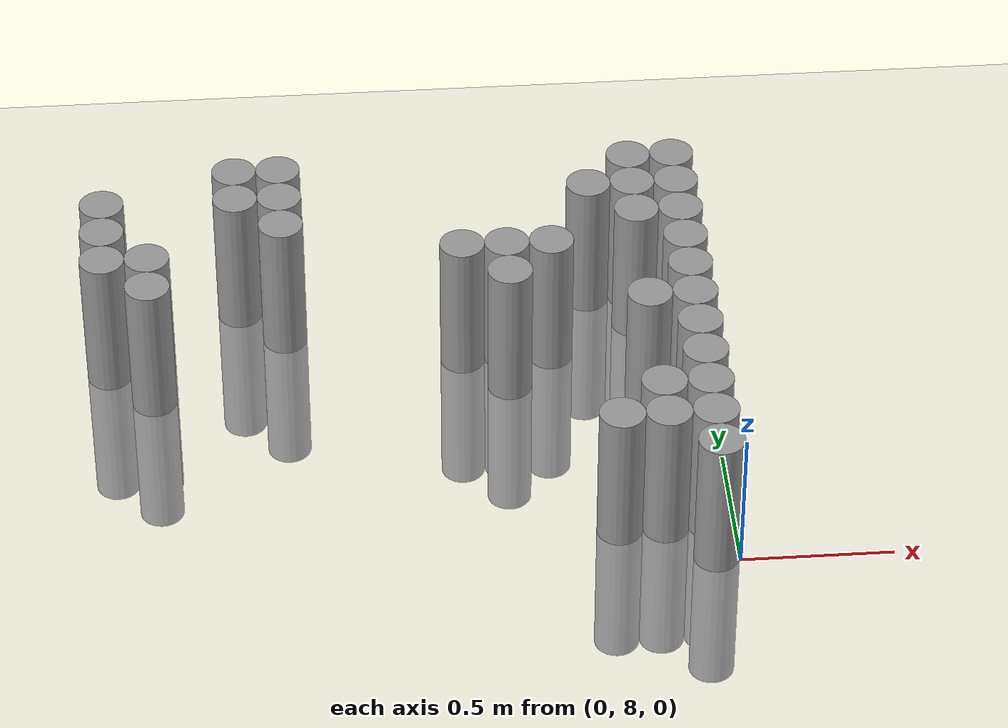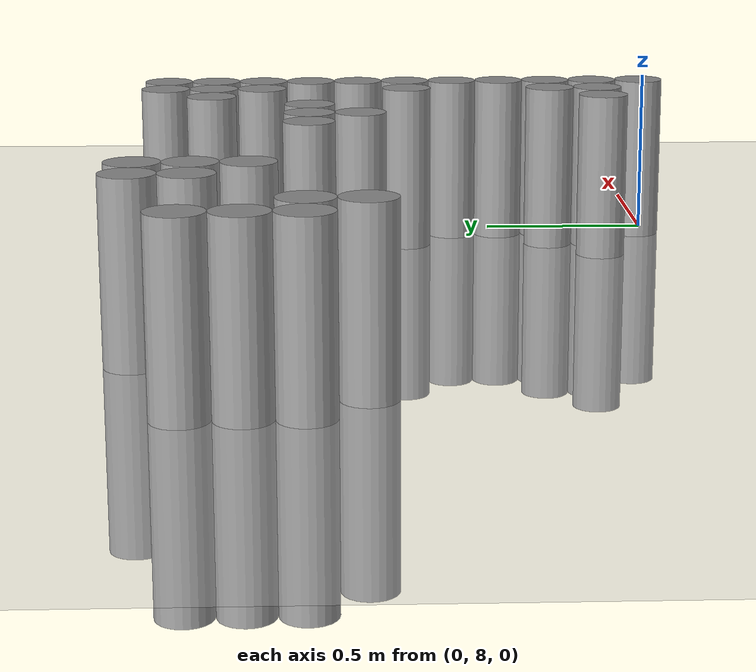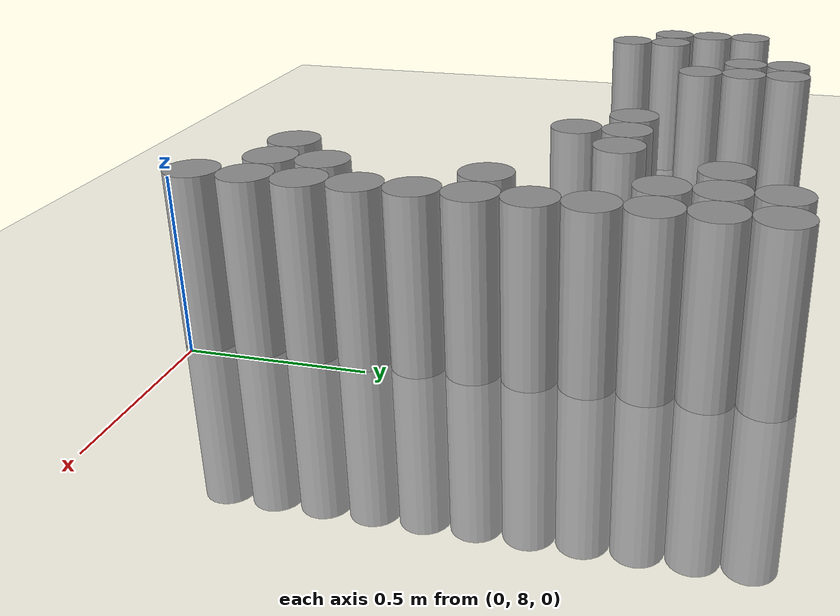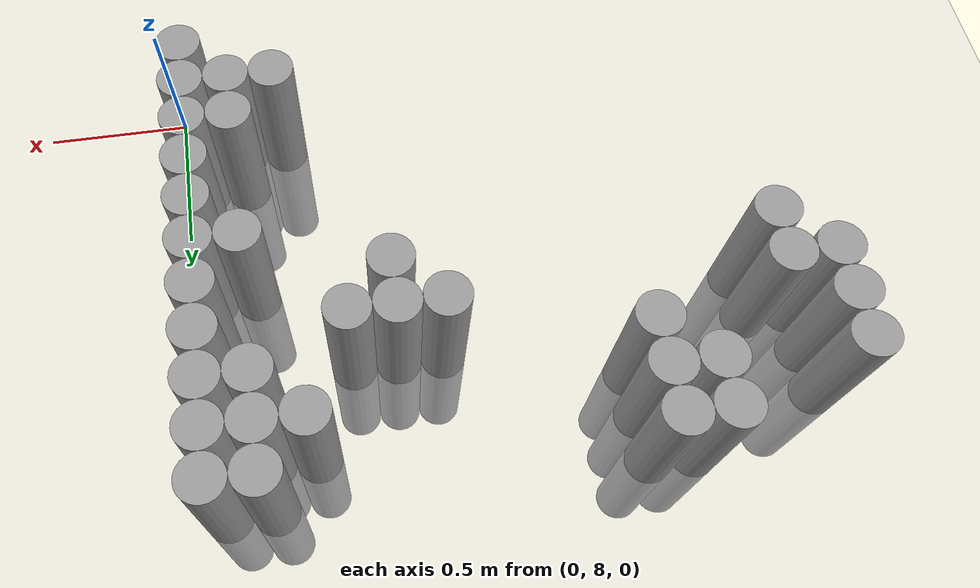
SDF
<sdf version="1.6">
 <world name="default">
  <model name="ground_plane">
   <static>1</static>
   <link name="link">
    <collision name="collision">
     <geometry><plane><normal>0 0 1</normal><size>100 100</size></plane></geometry>
     <surface><friction><ode><mu>100</mu><mu2>50</mu2></ode></friction></surface>
    </collision>
    <visual name="visual">
     <cast_shadows>0</cast_shadows>
     <geometry><plane><normal>0 0 1</normal><size>100 100</size></plane></geometry>
     <material>
      <script><uri>file://media/materials/scripts/gazebo.material</uri><name>Gazebo/Grey</name></script>
     </material>
    </visual>
   </link>
  </model>
  <model name="unit_cylinder_181">
   <pose>-2.025000 9.075000 0.000000 0.000000 0.000000 0.000000</pose>
   <link name="link">
    <inertial>
     <mass>1</mass>
     <inertia><ixx>0.145833</ixx><ixy>0</ixy><ixz>0</ixz><iyy>0.145833</iyy><iyz>0</iyz><izz>0.125</izz></inertia>
    </inertial>
    <collision name="collision">
     <geometry><cylinder><radius>0.075000</radius><length>1</length></cylinder></geometry>
    </collision>
    <visual name="visual">
     <geometry><cylinder><radius>0.075000</radius><length>1</length></cylinder></geometry>
     <material>
      <script><name>Gazebo/Grey</name><uri>file://media/materials/scripts/gazebo.material</uri></script>
     </material>
    </visual>
   </link>
  </model>
  <model name="unit_cylinder_182">
   <pose>-2.025000 9.225000 0.000000 0.000000 0.000000 0.000000</pose>
   <link name="link">
    <inertial>
     <mass>1</mass>
     <inertia><ixx>0.145833</ixx><ixy>0</ixy><ixz>0</ixz><iyy>0.145833</iyy><iyz>0</iyz><izz>0.125</izz></inertia>
    </inertial>
    <collision name="collision">
     <geometry><cylinder><radius>0.075000</radius><length>1</length></cylinder></geometry>
    </collision>
    <visual name="visual">
     <geometry><cylinder><radius>0.075000</radius><length>1</length></cylinder></geometry>
     <material>
      <script><name>Gazebo/Grey</name><uri>file://media/materials/scripts/gazebo.material</uri></script>
     </material>
    </visual>
   </link>
  </model>
  <model name="unit_cylinder_183">
   <pose>-2.025000 9.375000 0.000000 0.000000 0.000000 0.000000</pose>
   <link name="link">
    <inertial>
     <mass>1</mass>
     <inertia><ixx>0.145833</ixx><ixy>0</ixy><ixz>0</ixz><iyy>0.145833</iyy><iyz>0</iyz><izz>0.125</izz></inertia>
    </inertial>
    <collision name="collision">
     <geometry><cylinder><radius>0.075000</radius><length>1</length></cylinder></geometry>
    </collision>
    <visual name="visual">
     <geometry><cylinder><radius>0.075000</radius><length>1</length></cylinder></geometry>
     <material>
      <script><name>Gazebo/Grey</name><uri>file://media/materials/scripts/gazebo.material</uri></script>
     </material>
    </visual>
   </link>
  </model>
  <model name="unit_cylinder_185">
   <pose>-1.875000 8.925000 0.000000 0.000000 0.000000 0.000000</pose>
   <link name="link">
    <inertial>
     <mass>1</mass>
     <inertia><ixx>0.145833</ixx><ixy>0</ixy><ixz>0</ixz><iyy>0.145833</iyy><iyz>0</iyz><izz>0.125</izz></inertia>
    </inertial>
    <collision name="collision">
     <geometry><cylinder><radius>0.075000</radius><length>1</length></cylinder></geometry>
    </collision>
    <visual name="visual">
     <geometry><cylinder><radius>0.075000</radius><length>1</length></cylinder></geometry>
     <material>
      <script><name>Gazebo/Grey</name><uri>file://media/materials/scripts/gazebo.material</uri></script>
     </material>
    </visual>
   </link>
  </model>
  <model name="unit_cylinder_186">
   <pose>-1.875000 9.075000 0.000000 0.000000 0.000000 0.000000</pose>
   <link name="link">
    <inertial>
     <mass>1</mass>
     <inertia><ixx>0.145833</ixx><ixy>0</ixy><ixz>0</ixz><iyy>0.145833</iyy><iyz>0</iyz><izz>0.125</izz></inertia>
    </inertial>
    <collision name="collision">
     <geometry><cylinder><radius>0.075000</radius><length>1</length></cylinder></geometry>
    </collision>
    <visual name="visual">
     <geometry><cylinder><radius>0.075000</radius><length>1</length></cylinder></geometry>
     <material>
      <script><name>Gazebo/Grey</name><uri>file://media/materials/scripts/gazebo.material</uri></script>
     </material>
    </visual>
   </link>
  </model>
  <model name="unit_cylinder_188">
   <pose>-1.575000 9.375000 0.000000 0.000000 0.000000 0.000000</pose>
   <link name="link">
    <inertial>
     <mass>1</mass>
     <inertia><ixx>0.145833</ixx><ixy>0</ixy><ixz>0</ixz><iyy>0.145833</iyy><iyz>0</iyz><izz>0.125</izz></inertia>
    </inertial>
    <collision name="collision">
     <geometry><cylinder><radius>0.075000</radius><length>1</length></cylinder></geometry>
    </collision>
    <visual name="visual">
     <geometry><cylinder><radius>0.075000</radius><length>1</length></cylinder></geometry>
     <material>
      <script><name>Gazebo/Grey</name><uri>file://media/materials/scripts/gazebo.material</uri></script>
     </material>
    </visual>
   </link>
  </model>
  <model name="unit_cylinder_189">
   <pose>-1.575000 9.525000 0.000000 0.000000 0.000000 0.000000</pose>
   <link name="link">
    <inertial>
     <mass>1</mass>
     <inertia><ixx>0.145833</ixx><ixy>0</ixy><ixz>0</ixz><iyy>0.145833</iyy><iyz>0</iyz><izz>0.125</izz></inertia>
    </inertial>
    <collision name="collision">
     <geometry><cylinder><radius>0.075000</radius><length>1</length></cylinder></geometry>
    </collision>
    <visual name="visual">
     <geometry><cylinder><radius>0.075000</radius><length>1</length></cylinder></geometry>
     <material>
      <script><name>Gazebo/Grey</name><uri>file://media/materials/scripts/gazebo.material</uri></script>
     </material>
    </visual>
   </link>
  </model>
  <model name="unit_cylinder_192">
   <pose>-1.425000 9.225000 0.000000 0.000000 0.000000 0.000000</pose>
   <link name="link">
    <inertial>
     <mass>1</mass>
     <inertia><ixx>0.145833</ixx><ixy>0</ixy><ixz>0</ixz><iyy>0.145833</iyy><iyz>0</iyz><izz>0.125</izz></inertia>
    </inertial>
    <collision name="collision">
     <geometry><cylinder><radius>0.075000</radius><length>1</length></cylinder></geometry>
    </collision>
    <visual name="visual">
     <geometry><cylinder><radius>0.075000</radius><length>1</length></cylinder></geometry>
     <material>
      <script><name>Gazebo/Grey</name><uri>file://media/materials/scripts/gazebo.material</uri></script>
     </material>
    </visual>
   </link>
  </model>
  <model name="unit_cylinder_193">
   <pose>-1.425000 9.375000 0.000000 0.000000 0.000000 0.000000</pose>
   <link name="link">
    <inertial>
     <mass>1</mass>
     <inertia><ixx>0.145833</ixx><ixy>0</ixy><ixz>0</ixz><iyy>0.145833</iyy><iyz>0</iyz><izz>0.125</izz></inertia>
    </inertial>
    <collision name="collision">
     <geometry><cylinder><radius>0.075000</radius><length>1</length></cylinder></geometry>
    </collision>
    <visual name="visual">
     <geometry><cylinder><radius>0.075000</radius><length>1</length></cylinder></geometry>
     <material>
      <script><name>Gazebo/Grey</name><uri>file://media/materials/scripts/gazebo.material</uri></script>
     </material>
    </visual>
   </link>
  </model>
  <model name="unit_cylinder_194">
   <pose>-1.425000 9.525000 0.000000 0.000000 0.000000 0.000000</pose>
   <link name="link">
    <inertial>
     <mass>1</mass>
     <inertia><ixx>0.145833</ixx><ixy>0</ixy><ixz>0</ixz><iyy>0.145833</iyy><iyz>0</iyz><izz>0.125</izz></inertia>
    </inertial>
    <collision name="collision">
     <geometry><cylinder><radius>0.075000</radius><length>1</length></cylinder></geometry>
    </collision>
    <visual name="visual">
     <geometry><cylinder><radius>0.075000</radius><length>1</length></cylinder></geometry>
     <material>
      <script><name>Gazebo/Grey</name><uri>file://media/materials/scripts/gazebo.material</uri></script>
     </material>
    </visual>
   </link>
  </model>
  <model name="unit_cylinder_207">
   <pose>-0.825000 9.075000 0.000000 0.000000 0.000000 0.000000</pose>
   <link name="link">
    <inertial>
     <mass>1</mass>
     <inertia><ixx>0.145833</ixx><ixy>0</ixy><ixz>0</ixz><iyy>0.145833</iyy><iyz>0</iyz><izz>0.125</izz></inertia>
    </inertial>
    <collision name="collision">
     <geometry><cylinder><radius>0.075000</radius><length>1</length></cylinder></geometry>
    </collision>
    <visual name="visual">
     <geometry><cylinder><radius>0.075000</radius><length>1</length></cylinder></geometry>
     <material>
      <script><name>Gazebo/Grey</name><uri>file://media/materials/scripts/gazebo.material</uri></script>
     </material>
    </visual>
   </link>
  </model>
  <model name="unit_cylinder_212">
   <pose>-0.675000 8.925000 0.000000 0.000000 0.000000 0.000000</pose>
   <link name="link">
    <inertial>
     <mass>1</mass>
     <inertia><ixx>0.145833</ixx><ixy>0</ixy><ixz>0</ixz><iyy>0.145833</iyy><iyz>0</iyz><izz>0.125</izz></inertia>
    </inertial>
    <collision name="collision">
     <geometry><cylinder><radius>0.075000</radius><length>1</length></cylinder></geometry>
    </collision>
    <visual name="visual">
     <geometry><cylinder><radius>0.075000</radius><length>1</length></cylinder></geometry>
     <material>
      <script><name>Gazebo/Grey</name><uri>file://media/materials/scripts/gazebo.material</uri></script>
     </material>
    </visual>
   </link>
  </model>
  <model name="unit_cylinder_213">
   <pose>-0.675000 9.075000 0.000000 0.000000 0.000000 0.000000</pose>
   <link name="link">
    <inertial>
     <mass>1</mass>
     <inertia><ixx>0.145833</ixx><ixy>0</ixy><ixz>0</ixz><iyy>0.145833</iyy><iyz>0</iyz><izz>0.125</izz></inertia>
    </inertial>
    <collision name="collision">
     <geometry><cylinder><radius>0.075000</radius><length>1</length></cylinder></geometry>
    </collision>
    <visual name="visual">
     <geometry><cylinder><radius>0.075000</radius><length>1</length></cylinder></geometry>
     <material>
      <script><name>Gazebo/Grey</name><uri>file://media/materials/scripts/gazebo.material</uri></script>
     </material>
    </visual>
   </link>
  </model>
  <model name="unit_cylinder_215">
   <pose>-0.525000 9.075000 0.000000 0.000000 0.000000 0.000000</pose>
   <link name="link">
    <inertial>
     <mass>1</mass>
     <inertia><ixx>0.145833</ixx><ixy>0</ixy><ixz>0</ixz><iyy>0.145833</iyy><iyz>0</iyz><izz>0.125</izz></inertia>
    </inertial>
    <collision name="collision">
     <geometry><cylinder><radius>0.075000</radius><length>1</length></cylinder></geometry>
    </collision>
    <visual name="visual">
     <geometry><cylinder><radius>0.075000</radius><length>1</length></cylinder></geometry>
     <material>
      <script><name>Gazebo/Grey</name><uri>file://media/materials/scripts/gazebo.material</uri></script>
     </material>
    </visual>
   </link>
  </model>
  <model name="unit_cylinder_217">
   <pose>-0.375000 8.175000 0.000000 0.000000 0.000000 0.000000</pose>
   <link name="link">
    <inertial>
     <mass>1</mass>
     <inertia><ixx>0.145833</ixx><ixy>0</ixy><ixz>0</ixz><iyy>0.145833</iyy><iyz>0</iyz><izz>0.125</izz></inertia>
    </inertial>
    <collision name="collision">
     <geometry><cylinder><radius>0.075000</radius><length>1</length></cylinder></geometry>
    </collision>
    <visual name="visual">
     <geometry><cylinder><radius>0.075000</radius><length>1</length></cylinder></geometry>
     <material>
      <script><name>Gazebo/Grey</name><uri>file://media/materials/scripts/gazebo.material</uri></script>
     </material>
    </visual>
   </link>
  </model>
  <model name="unit_cylinder_218">
   <pose>-0.375000 9.375000 0.000000 0.000000 0.000000 0.000000</pose>
   <link name="link">
    <inertial>
     <mass>1</mass>
     <inertia><ixx>0.145833</ixx><ixy>0</ixy><ixz>0</ixz><iyy>0.145833</iyy><iyz>0</iyz><izz>0.125</izz></inertia>
    </inertial>
    <collision name="collision">
     <geometry><cylinder><radius>0.075000</radius><length>1</length></cylinder></geometry>
    </collision>
    <visual name="visual">
     <geometry><cylinder><radius>0.075000</radius><length>1</length></cylinder></geometry>
     <material>
      <script><name>Gazebo/Grey</name><uri>file://media/materials/scripts/gazebo.material</uri></script>
     </material>
    </visual>
   </link>
  </model>
  <model name="unit_cylinder_226">
   <pose>-0.225000 8.175000 0.000000 0.000000 0.000000 0.000000</pose>
   <link name="link">
    <inertial>
     <mass>1</mass>
     <inertia><ixx>0.145833</ixx><ixy>0</ixy><ixz>0</ixz><iyy>0.145833</iyy><iyz>0</iyz><izz>0.125</izz></inertia>
    </inertial>
    <collision name="collision">
     <geometry><cylinder><radius>0.075000</radius><length>1</length></cylinder></geometry>
    </collision>
    <visual name="visual">
     <geometry><cylinder><radius>0.075000</radius><length>1</length></cylinder></geometry>
     <material>
      <script><name>Gazebo/Grey</name><uri>file://media/materials/scripts/gazebo.material</uri></script>
     </material>
    </visual>
   </link>
  </model>
  <model name="unit_cylinder_227">
   <pose>-0.225000 8.325000 0.000000 0.000000 0.000000 0.000000</pose>
   <link name="link">
    <inertial>
     <mass>1</mass>
     <inertia><ixx>0.145833</ixx><ixy>0</ixy><ixz>0</ixz><iyy>0.145833</iyy><iyz>0</iyz><izz>0.125</izz></inertia>
    </inertial>
    <collision name="collision">
     <geometry><cylinder><radius>0.075000</radius><length>1</length></cylinder></geometry>
    </collision>
    <visual name="visual">
     <geometry><cylinder><radius>0.075000</radius><length>1</length></cylinder></geometry>
     <material>
      <script><name>Gazebo/Grey</name><uri>file://media/materials/scripts/gazebo.material</uri></script>
     </material>
    </visual>
   </link>
  </model>
  <model name="unit_cylinder_228">
   <pose>-0.225000 8.775000 0.000000 0.000000 0.000000 0.000000</pose>
   <link name="link">
    <inertial>
     <mass>1</mass>
     <inertia><ixx>0.145833</ixx><ixy>0</ixy><ixz>0</ixz><iyy>0.145833</iyy><iyz>0</iyz><izz>0.125</izz></inertia>
    </inertial>
    <collision name="collision">
     <geometry><cylinder><radius>0.075000</radius><length>1</length></cylinder></geometry>
    </collision>
    <visual name="visual">
     <geometry><cylinder><radius>0.075000</radius><length>1</length></cylinder></geometry>
     <material>
      <script><name>Gazebo/Grey</name><uri>file://media/materials/scripts/gazebo.material</uri></script>
     </material>
    </visual>
   </link>
  </model>
  <model name="unit_cylinder_229">
   <pose>-0.225000 9.225000 0.000000 0.000000 0.000000 0.000000</pose>
   <link name="link">
    <inertial>
     <mass>1</mass>
     <inertia><ixx>0.145833</ixx><ixy>0</ixy><ixz>0</ixz><iyy>0.145833</iyy><iyz>0</iyz><izz>0.125</izz></inertia>
    </inertial>
    <collision name="collision">
     <geometry><cylinder><radius>0.075000</radius><length>1</length></cylinder></geometry>
    </collision>
    <visual name="visual">
     <geometry><cylinder><radius>0.075000</radius><length>1</length></cylinder></geometry>
     <material>
      <script><name>Gazebo/Grey</name><uri>file://media/materials/scripts/gazebo.material</uri></script>
     </material>
    </visual>
   </link>
  </model>
  <model name="unit_cylinder_230">
   <pose>-0.225000 9.375000 0.000000 0.000000 0.000000 0.000000</pose>
   <link name="link">
    <inertial>
     <mass>1</mass>
     <inertia><ixx>0.145833</ixx><ixy>0</ixy><ixz>0</ixz><iyy>0.145833</iyy><iyz>0</iyz><izz>0.125</izz></inertia>
    </inertial>
    <collision name="collision">
     <geometry><cylinder><radius>0.075000</radius><length>1</length></cylinder></geometry>
    </collision>
    <visual name="visual">
     <geometry><cylinder><radius>0.075000</radius><length>1</length></cylinder></geometry>
     <material>
      <script><name>Gazebo/Grey</name><uri>file://media/materials/scripts/gazebo.material</uri></script>
     </material>
    </visual>
   </link>
  </model>
  <model name="unit_cylinder_231">
   <pose>-0.225000 9.525000 0.000000 0.000000 0.000000 0.000000</pose>
   <link name="link">
    <inertial>
     <mass>1</mass>
     <inertia><ixx>0.145833</ixx><ixy>0</ixy><ixz>0</ixz><iyy>0.145833</iyy><iyz>0</iyz><izz>0.125</izz></inertia>
    </inertial>
    <collision name="collision">
     <geometry><cylinder><radius>0.075000</radius><length>1</length></cylinder></geometry>
    </collision>
    <visual name="visual">
     <geometry><cylinder><radius>0.075000</radius><length>1</length></cylinder></geometry>
     <material>
      <script><name>Gazebo/Grey</name><uri>file://media/materials/scripts/gazebo.material</uri></script>
     </material>
    </visual>
   </link>
  </model>
  <model name="unit_cylinder_251">
   <pose>-0.075000 8.025000 0.000000 0.000000 0.000000 0.000000</pose>
   <link name="link">
    <inertial>
     <mass>1</mass>
     <inertia><ixx>0.145833</ixx><ixy>0</ixy><ixz>0</ixz><iyy>0.145833</iyy><iyz>0</iyz><izz>0.125</izz></inertia>
    </inertial>
    <collision name="collision">
     <geometry><cylinder><radius>0.075000</radius><length>1</length></cylinder></geometry>
    </collision>
    <visual name="visual">
     <geometry><cylinder><radius>0.075000</radius><length>1</length></cylinder></geometry>
     <material>
      <script><name>Gazebo/Grey</name><uri>file://media/materials/scripts/gazebo.material</uri></script>
     </material>
    </visual>
   </link>
  </model>
  <model name="unit_cylinder_252">
   <pose>-0.075000 8.175000 0.000000 0.000000 0.000000 0.000000</pose>
   <link name="link">
    <inertial>
     <mass>1</mass>
     <inertia><ixx>0.145833</ixx><ixy>0</ixy><ixz>0</ixz><iyy>0.145833</iyy><iyz>0</iyz><izz>0.125</izz></inertia>
    </inertial>
    <collision name="collision">
     <geometry><cylinder><radius>0.075000</radius><length>1</length></cylinder></geometry>
    </collision>
    <visual name="visual">
     <geometry><cylinder><radius>0.075000</radius><length>1</length></cylinder></geometry>
     <material>
      <script><name>Gazebo/Grey</name><uri>file://media/materials/scripts/gazebo.material</uri></script>
     </material>
    </visual>
   </link>
  </model>
  <model name="unit_cylinder_253">
   <pose>-0.075000 8.325000 0.000000 0.000000 0.000000 0.000000</pose>
   <link name="link">
    <inertial>
     <mass>1</mass>
     <inertia><ixx>0.145833</ixx><ixy>0</ixy><ixz>0</ixz><iyy>0.145833</iyy><iyz>0</iyz><izz>0.125</izz></inertia>
    </inertial>
    <collision name="collision">
     <geometry><cylinder><radius>0.075000</radius><length>1</length></cylinder></geometry>
    </collision>
    <visual name="visual">
     <geometry><cylinder><radius>0.075000</radius><length>1</length></cylinder></geometry>
     <material>
      <script><name>Gazebo/Grey</name><uri>file://media/materials/scripts/gazebo.material</uri></script>
     </material>
    </visual>
   </link>
  </model>
  <model name="unit_cylinder_254">
   <pose>-0.075000 8.475000 0.000000 0.000000 0.000000 0.000000</pose>
   <link name="link">
    <inertial>
     <mass>1</mass>
     <inertia><ixx>0.145833</ixx><ixy>0</ixy><ixz>0</ixz><iyy>0.145833</iyy><iyz>0</iyz><izz>0.125</izz></inertia>
    </inertial>
    <collision name="collision">
     <geometry><cylinder><radius>0.075000</radius><length>1</length></cylinder></geometry>
    </collision>
    <visual name="visual">
     <geometry><cylinder><radius>0.075000</radius><length>1</length></cylinder></geometry>
     <material>
      <script><name>Gazebo/Grey</name><uri>file://media/materials/scripts/gazebo.material</uri></script>
     </material>
    </visual>
   </link>
  </model>
  <model name="unit_cylinder_255">
   <pose>-0.075000 8.625000 0.000000 0.000000 0.000000 0.000000</pose>
   <link name="link">
    <inertial>
     <mass>1</mass>
     <inertia><ixx>0.145833</ixx><ixy>0</ixy><ixz>0</ixz><iyy>0.145833</iyy><iyz>0</iyz><izz>0.125</izz></inertia>
    </inertial>
    <collision name="collision">
     <geometry><cylinder><radius>0.075000</radius><length>1</length></cylinder></geometry>
    </collision>
    <visual name="visual">
     <geometry><cylinder><radius>0.075000</radius><length>1</length></cylinder></geometry>
     <material>
      <script><name>Gazebo/Grey</name><uri>file://media/materials/scripts/gazebo.material</uri></script>
     </material>
    </visual>
   </link>
  </model>
  <model name="unit_cylinder_256">
   <pose>-0.075000 8.775000 0.000000 0.000000 0.000000 0.000000</pose>
   <link name="link">
    <inertial>
     <mass>1</mass>
     <inertia><ixx>0.145833</ixx><ixy>0</ixy><ixz>0</ixz><iyy>0.145833</iyy><iyz>0</iyz><izz>0.125</izz></inertia>
    </inertial>
    <collision name="collision">
     <geometry><cylinder><radius>0.075000</radius><length>1</length></cylinder></geometry>
    </collision>
    <visual name="visual">
     <geometry><cylinder><radius>0.075000</radius><length>1</length></cylinder></geometry>
     <material>
      <script><name>Gazebo/Grey</name><uri>file://media/materials/scripts/gazebo.material</uri></script>
     </material>
    </visual>
   </link>
  </model>
  <model name="unit_cylinder_257">
   <pose>-0.075000 8.925000 0.000000 0.000000 0.000000 0.000000</pose>
   <link name="link">
    <inertial>
     <mass>1</mass>
     <inertia><ixx>0.145833</ixx><ixy>0</ixy><ixz>0</ixz><iyy>0.145833</iyy><iyz>0</iyz><izz>0.125</izz></inertia>
    </inertial>
    <collision name="collision">
     <geometry><cylinder><radius>0.075000</radius><length>1</length></cylinder></geometry>
    </collision>
    <visual name="visual">
     <geometry><cylinder><radius>0.075000</radius><length>1</length></cylinder></geometry>
     <material>
      <script><name>Gazebo/Grey</name><uri>file://media/materials/scripts/gazebo.material</uri></script>
     </material>
    </visual>
   </link>
  </model>
  <model name="unit_cylinder_258">
   <pose>-0.075000 9.075000 0.000000 0.000000 0.000000 0.000000</pose>
   <link name="link">
    <inertial>
     <mass>1</mass>
     <inertia><ixx>0.145833</ixx><ixy>0</ixy><ixz>0</ixz><iyy>0.145833</iyy><iyz>0</iyz><izz>0.125</izz></inertia>
    </inertial>
    <collision name="collision">
     <geometry><cylinder><radius>0.075000</radius><length>1</length></cylinder></geometry>
    </collision>
    <visual name="visual">
     <geometry><cylinder><radius>0.075000</radius><length>1</length></cylinder></geometry>
     <material>
      <script><name>Gazebo/Grey</name><uri>file://media/materials/scripts/gazebo.material</uri></script>
     </material>
    </visual>
   </link>
  </model>
  <model name="unit_cylinder_259">
   <pose>-0.075000 9.225000 0.000000 0.000000 0.000000 0.000000</pose>
   <link name="link">
    <inertial>
     <mass>1</mass>
     <inertia><ixx>0.145833</ixx><ixy>0</ixy><ixz>0</ixz><iyy>0.145833</iyy><iyz>0</iyz><izz>0.125</izz></inertia>
    </inertial>
    <collision name="collision">
     <geometry><cylinder><radius>0.075000</radius><length>1</length></cylinder></geometry>
    </collision>
    <visual name="visual">
     <geometry><cylinder><radius>0.075000</radius><length>1</length></cylinder></geometry>
     <material>
      <script><name>Gazebo/Grey</name><uri>file://media/materials/scripts/gazebo.material</uri></script>
     </material>
    </visual>
   </link>
  </model>
  <model name="unit_cylinder_260">
   <pose>-0.075000 9.375000 0.000000 0.000000 0.000000 0.000000</pose>
   <link name="link">
    <inertial>
     <mass>1</mass>
     <inertia><ixx>0.145833</ixx><ixy>0</ixy><ixz>0</ixz><iyy>0.145833</iyy><iyz>0</iyz><izz>0.125</izz></inertia>
    </inertial>
    <collision name="collision">
     <geometry><cylinder><radius>0.075000</radius><length>1</length></cylinder></geometry>
    </collision>
    <visual name="visual">
     <geometry><cylinder><radius>0.075000</radius><length>1</length></cylinder></geometry>
     <material>
      <script><name>Gazebo/Grey</name><uri>file://media/materials/scripts/gazebo.material</uri></script>
     </material>
    </visual>
   </link>
  </model>
  <model name="unit_cylinder_261">
   <pose>-0.075000 9.525000 0.000000 0.000000 0.000000 0.000000</pose>
   <link name="link">
    <inertial>
     <mass>1</mass>
     <inertia><ixx>0.145833</ixx><ixy>0</ixy><ixz>0</ixz><iyy>0.145833</iyy><iyz>0</iyz><izz>0.125</izz></inertia>
    </inertial>
    <collision name="collision">
     <geometry><cylinder><radius>0.075000</radius><length>1</length></cylinder></geometry>
    </collision>
    <visual name="visual">
     <geometry><cylinder><radius>0.075000</radius><length>1</length></cylinder></geometry>
     <material>
      <script><name>Gazebo/Grey</name><uri>file://media/materials/scripts/gazebo.material</uri></script>
     </material>
    </visual>
   </link>
  </model>
 </world>
</sdf>
